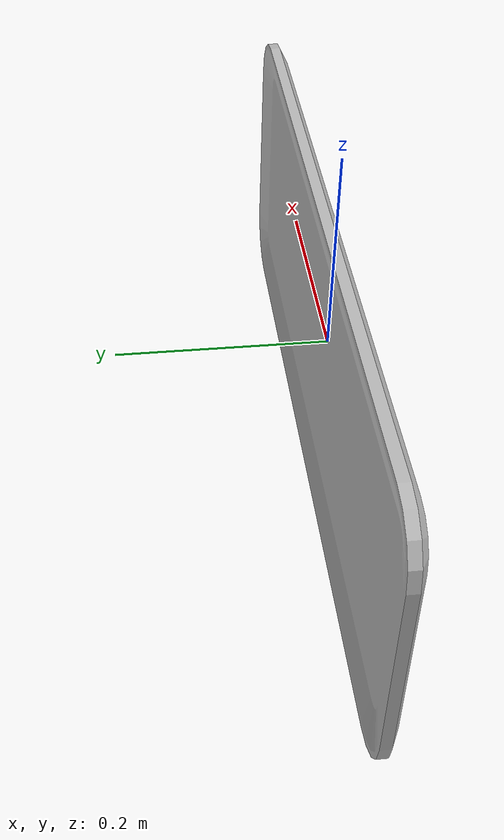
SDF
<?xml version="1.0" ?>
<sdf version="1.4">
  <model name="shelf2_tray2">
    <link name="body">
      <pose>0 0 0 0 0 0</pose>
      <inertial>
        <pose>  -0.006000   0.007111   0.004000 0 0 0</pose>
        <mass>0.5</mass>
        <inertia>
          <ixx>0.01</ixx>
          <ixy>0</ixy>
          <ixz>0</ixz>
          <iyy>0.01</iyy>
          <iyz>0</iyz>
          <izz>0.01</izz>
        </inertia>
      </inertial>
      <collision name="collision">
        <geometry>
          <mesh>
            <uri>model://bookshelf/shelf2_items/tray2/tray2.dae</uri>
          </mesh>
        </geometry>
      </collision>
      <visual name="visual">
        <geometry>
          <mesh>
            <uri>model://bookshelf/shelf2_items/tray2/tray2.dae</uri>
          </mesh>
        </geometry>
      </visual>
    </link>
  </model>
</sdf>
